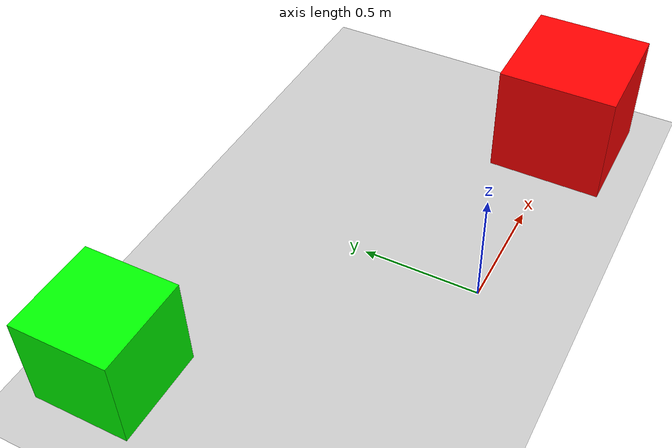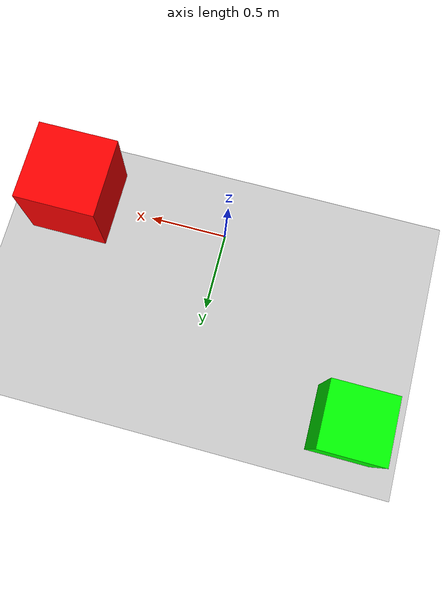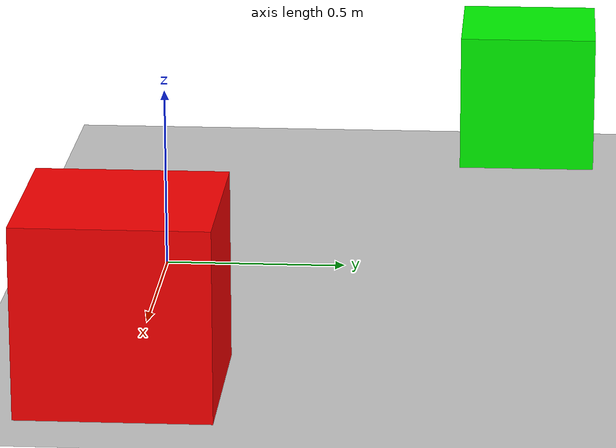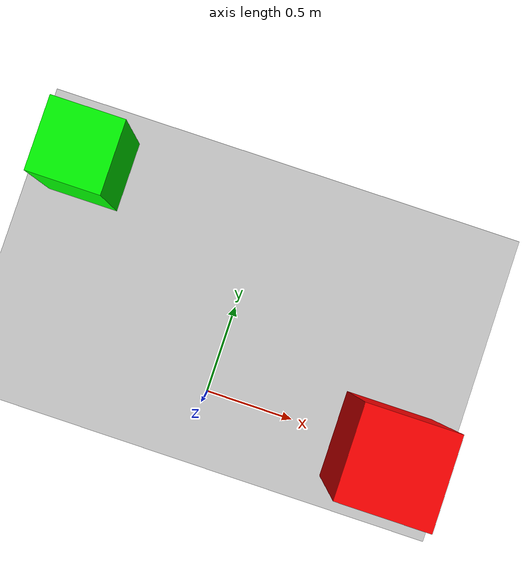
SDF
<sdf version="1.7">
  <world name="default">
    <include>
      <uri>model://sun</uri>
    </include>
    <include>
      <uri>model://ground_plane</uri>
    </include>

    <!-- Box obstacle 1 -->
    <model name="box1">
      <static>true</static>
      <pose>1.0 0 0.25 0 0 0</pose>
      <link name="link">
        <visual name="visual">
          <geometry>
            <box><size>0.5 0.5 0.5</size></box>
          </geometry>
          <material><ambient>1 0 0 1</ambient></material>
        </visual>
        <collision name="collision">
          <geometry>
            <box><size>0.5 0.5 0.5</size></box>
          </geometry>
        </collision>
      </link>
    </model>

    <!-- Box obstacle 2 -->
    <model name="box2">
      <static>true</static>
      <pose>-1.0 1.0 0.25 0 0 0</pose>
      <link name="link">
        <visual name="visual">
          <geometry>
            <box><size>0.4 0.4 0.4</size></box>
          </geometry>
          <material><ambient>0 1 0 1</ambient></material>
        </visual>
        <collision name="collision">
          <geometry>
            <box><size>0.4 0.4 0.4</size></box>
          </geometry>
        </collision>
      </link>
    </model>
  </world>
</sdf>
